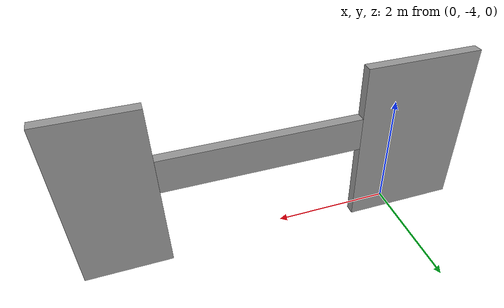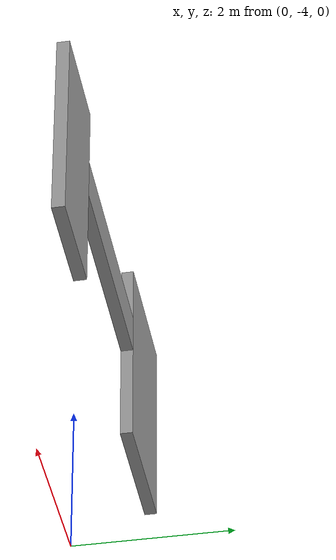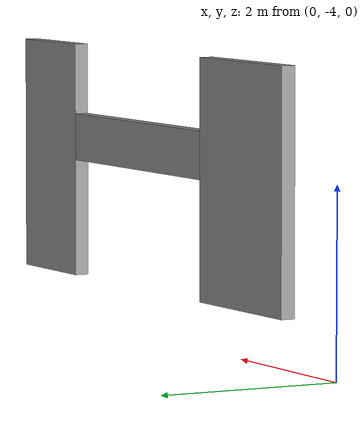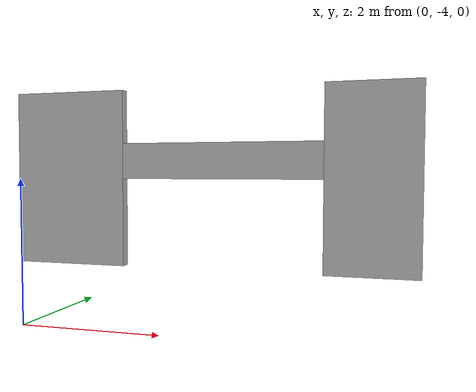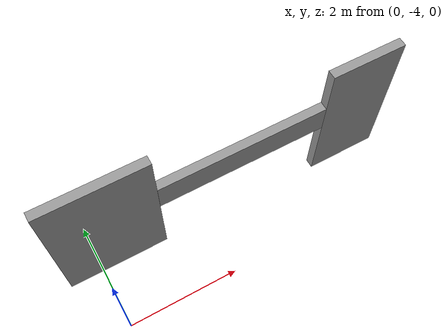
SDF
<?xml version='1.0'?>
<sdf version='1.6'>
  <model name='big_door'>
    <pose frame=''>2.32 -3.12 0 0 -0 0</pose>
    <link name='Wall_7'>
      <pose frame=''>0 0 0 0 -0 0</pose>
      <visual name='Wall_7_Visual_0'>
        <pose frame=''>-2.02829 0 2 0 -0 0</pose>
        <geometry>
          <box>
            <size>1.69342 0.15 2.5</size>
          </box>
        </geometry>
        <material>
          <script>
            <uri>file://media/materials/scripts/gazebo.material</uri>
            <name>Gazebo/Grey</name>
          </script>
          <ambient>1 1 1 1</ambient>
        </material>
        <meta>
          <layer>0</layer>
        </meta>
      </visual>
      <collision name='Wall_7_Collision_0'>
        <geometry>
          <box>
            <size>1.69342 0.15 2.5</size>
          </box>
        </geometry>
        <pose frame=''>-2.02829 0 2 0 -0 0</pose>
      </collision>
      <visual name='Wall_7_Visual_1'>
        <pose frame=''>2.26247 0 2 0 -0 0</pose>
        <geometry>
          <box>
            <size>1.22507 0.15 2.5</size>
          </box>
        </geometry>
        <material>
          <script>
            <uri>file://media/materials/scripts/gazebo.material</uri>
            <name>Gazebo/Grey</name>
          </script>
          <ambient>1 1 1 1</ambient>
        </material>
        <meta>
          <layer>0</layer>
        </meta>
      </visual>
      <collision name='Wall_7_Collision_1'>
        <geometry>
          <box>
            <size>1.22507 0.15 2.5</size>
          </box>
        </geometry>
        <pose frame=''>2.26247 0 2 0 -0 0</pose>
      </collision>
      <visual name='Wall_7_Visual_2'>
        <pose frame=''>0.234175 0 2.25 0 -0 0</pose>
        <geometry>
          <box>
            <size>2.83151 0.15 0.5</size>
          </box>
        </geometry>
        <material>
          <script>
            <uri>file://media/materials/scripts/gazebo.material</uri>
            <name>Gazebo/Grey</name>
          </script>
          <ambient>1 1 1 1</ambient>
        </material>
        <meta>
          <layer>0</layer>
        </meta>
      </visual>
      <collision name='Wall_7_Collision_2'>
        <geometry>
          <box>
            <size>2.83151 0.15 0.5</size>
          </box>
        </geometry>
        <pose frame=''>0.234175 0 2.25 0 -0 0</pose>
      </collision>
    </link>
    <static>1</static>
  </model>
</sdf>
